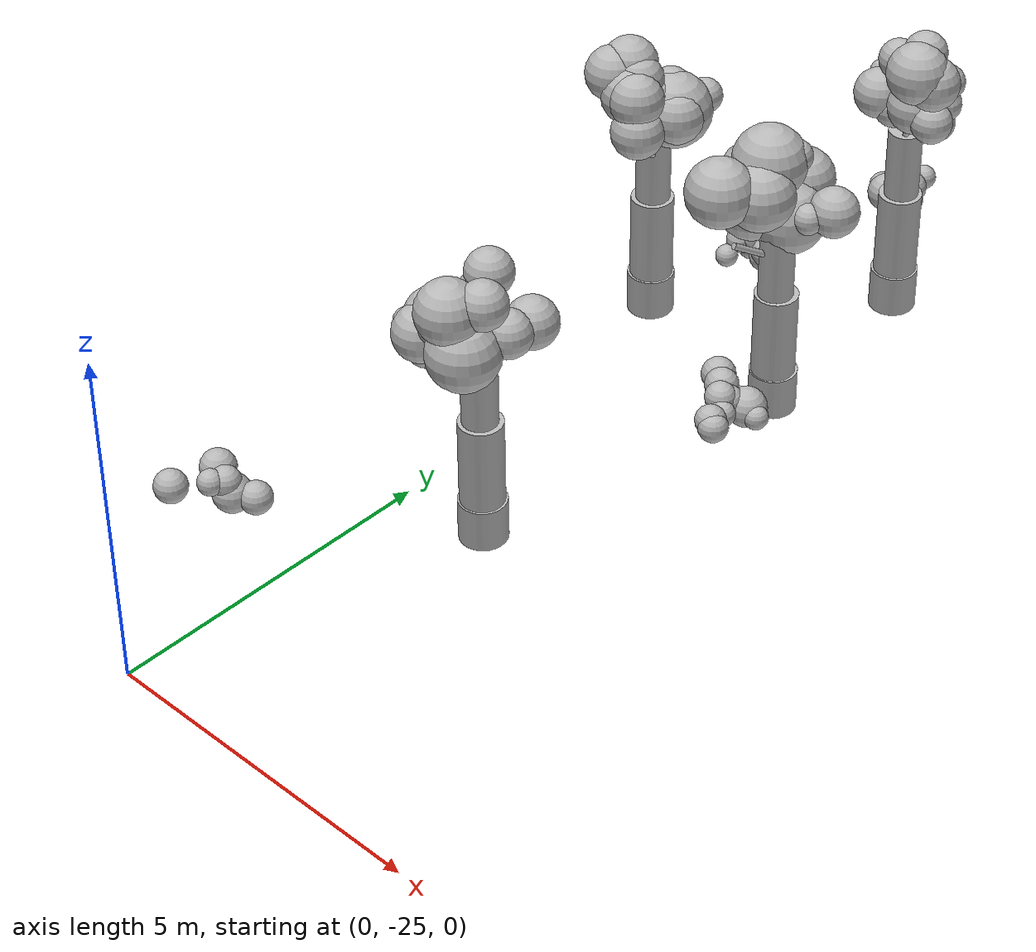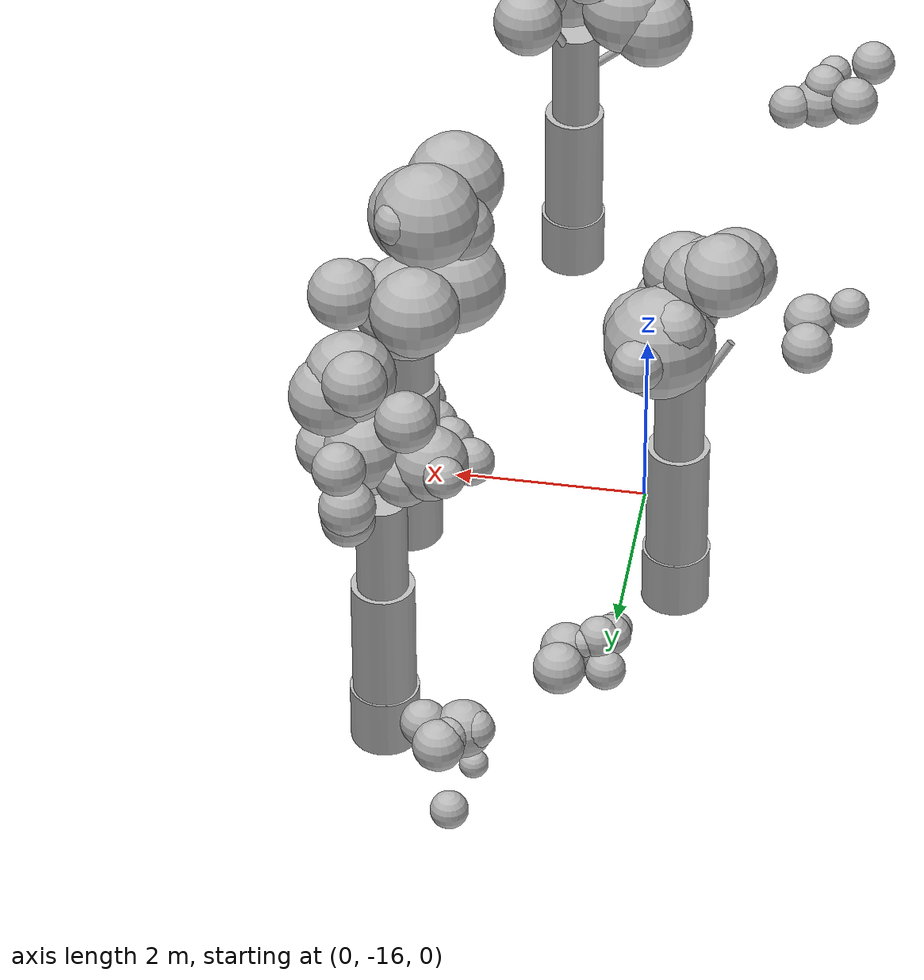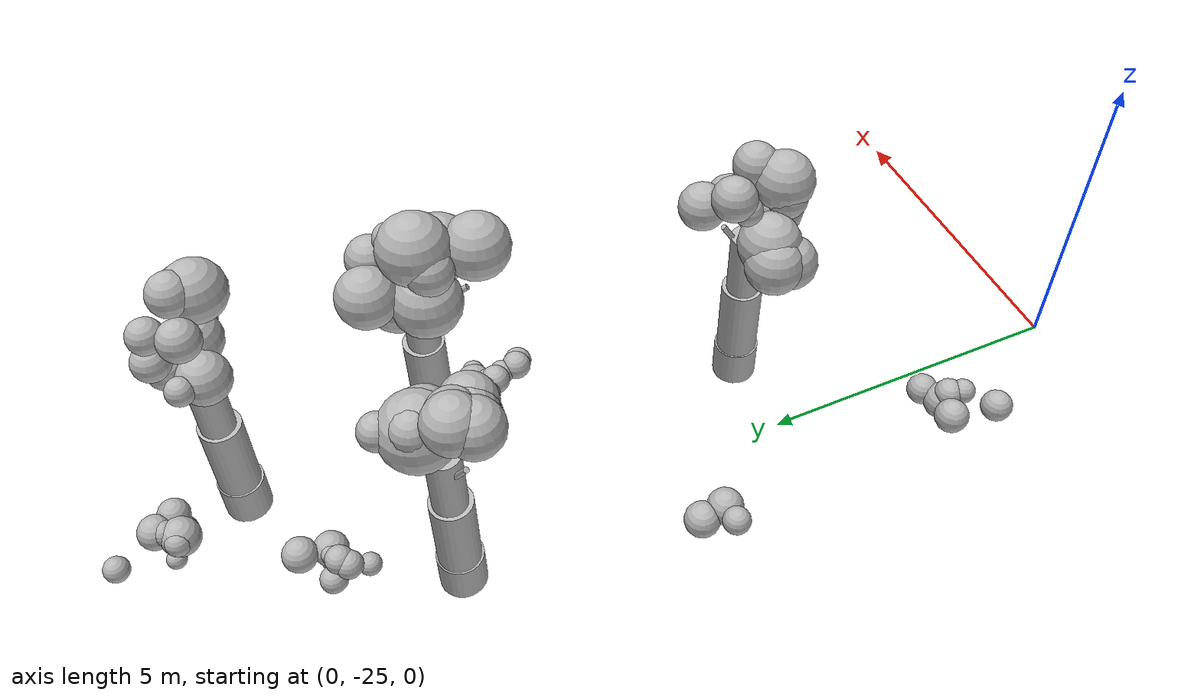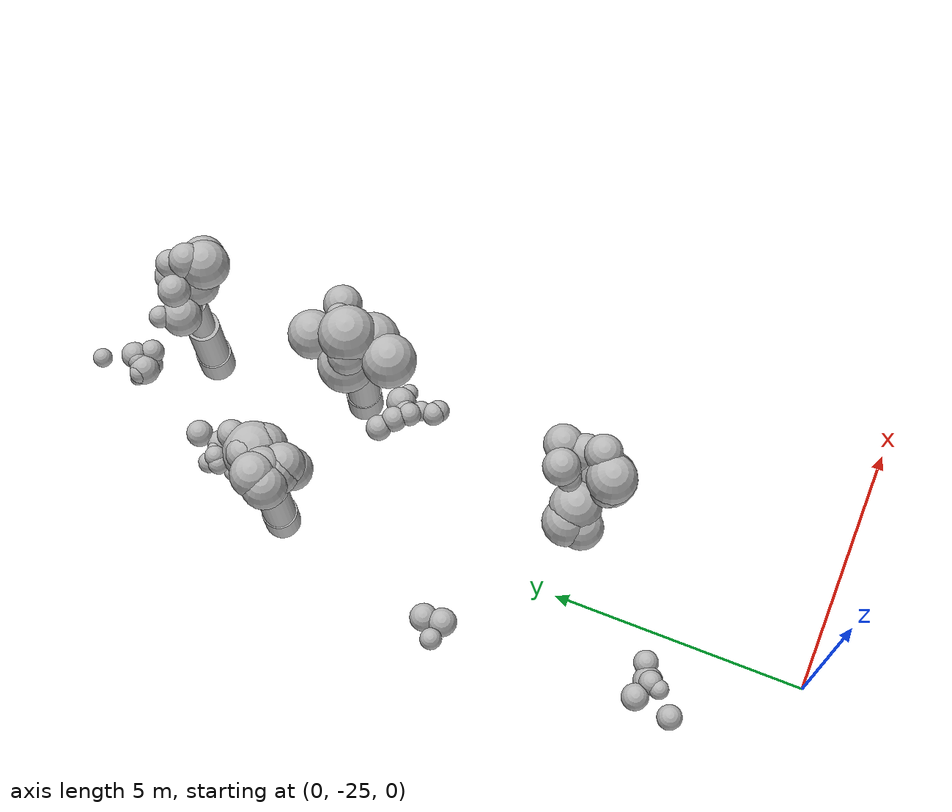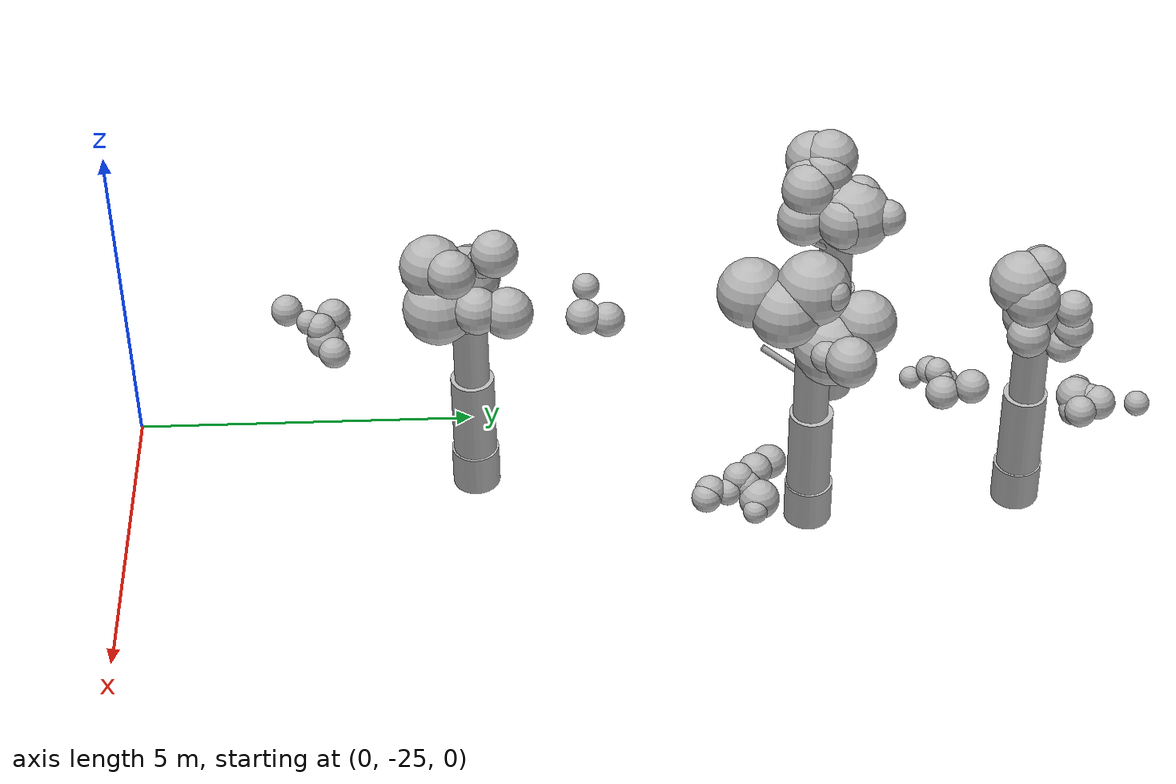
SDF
<sdf version="1.6">
 <world name="default">
  <model name="bush_4">
   <static>true</static>
   <pose>2.0258 -11.9787 0 0 0 0</pose>
   <link name="trunk">
    <pose>0 0 1.5000 0 0 0</pose>
    <collision name="trunk_c">
     <geometry><cylinder><radius>0.3500</radius><length>3.0000</length></cylinder></geometry>
    </collision>
   </link>
   <link name="trunk_v0">
    <pose>-0.0002 0.0012 0.3100 0 0 0</pose>
    <visual name="trunk_v0_v">
     <geometry><cylinder><radius>0.3448</radius><length>0.6448</length></cylinder></geometry>
     <material>
      <script>
       <uri>model://bushfire/materials/scripts</uri>
       <uri>model://bushfire/materials/textures</uri>
       <name>Bushfire/CharBark</name>
      </script>
     </material>
    </visual>
   </link>
   <link name="trunk_v1">
    <pose>-0.0013 0.0086 1.2700 0 0 0</pose>
    <visual name="trunk_v1_v">
     <geometry><cylinder><radius>0.3150</radius><length>1.3520</length></cylinder></geometry>
     <material>
      <script>
       <uri>model://bushfire/materials/scripts</uri>
       <uri>model://bushfire/materials/textures</uri>
       <name>Bushfire/BarkSmooth</name>
      </script>
     </material>
    </visual>
   </link>
   <link name="trunk_v2">
    <pose>-0.0032 0.0218 2.4600 0 0 0</pose>
    <visual name="trunk_v2_v">
     <geometry><cylinder><radius>0.2520</radius><length>1.1232</length></cylinder></geometry>
     <material>
      <script>
       <uri>model://bushfire/materials/scripts</uri>
       <uri>model://bushfire/materials/textures</uri>
       <name>Bushfire/BarkSmooth</name>
      </script>
     </material>
    </visual>
   </link>
   <link name="branch0">
    <pose>0.1384 -0.1552 3.1779 0 0.5532 5.4406</pose>
    <visual name="branch0_v">
     <geometry><cylinder><radius>0.0456</radius><length>0.7915</length></cylinder></geometry>
     <material>
      <script>
       <uri>model://bushfire/materials/scripts</uri>
       <uri>model://bushfire/materials/textures</uri>
       <name>Bushfire/BarkSmooth</name>
      </script>
     </material>
    </visual>
   </link>
   <link name="branch1">
    <pose>0.1120 0.2072 2.8058 0 0.7359 7.3583</pose>
    <visual name="branch1_v">
     <geometry><cylinder><radius>0.0362</radius><length>0.7017</length></cylinder></geometry>
     <material>
      <script>
       <uri>model://bushfire/materials/scripts</uri>
       <uri>model://bushfire/materials/textures</uri>
       <name>Bushfire/BarkSmooth</name>
      </script>
     </material>
    </visual>
   </link>
   <link name="branch2">
    <pose>-0.3296 -0.0230 3.0466 0 0.9083 9.4946</pose>
    <visual name="branch2_v">
     <geometry><cylinder><radius>0.0307</radius><length>0.8381</length></cylinder></geometry>
     <material>
      <script>
       <uri>model://bushfire/materials/scripts</uri>
       <uri>model://bushfire/materials/textures</uri>
       <name>Bushfire/BarkSmooth</name>
      </script>
     </material>
    </visual>
   </link>
   <link name="foliage0">
    <pose>0.3318 -0.2785 4.2442 0 0 0</pose>
    <visual name="foliage0_v">
     <geometry><sphere><radius>0.4470</radius></sphere></geometry>
     <material>
      <script>
       <uri>model://bushfire/materials/scripts</uri>
       <uri>model://bushfire/materials/textures</uri>
       <name>Bushfire/Foliage0</name>
      </script>
     </material>
    </visual>
   </link>
   <link name="foliage1">
    <pose>0.2436 0.4138 3.0568 0 0 0</pose>
    <visual name="foliage1_v">
     <geometry><sphere><radius>0.2616</radius></sphere></geometry>
     <material>
      <script>
       <uri>model://bushfire/materials/scripts</uri>
       <uri>model://bushfire/materials/textures</uri>
       <name>Bushfire/Foliage1</name>
      </script>
     </material>
    </visual>
   </link>
   <link name="foliage2">
    <pose>-0.6628 0.2693 3.5846 0 0 0</pose>
    <visual name="foliage2_v">
     <geometry><sphere><radius>0.2007</radius></sphere></geometry>
     <material>
      <script>
       <uri>model://bushfire/materials/scripts</uri>
       <uri>model://bushfire/materials/textures</uri>
       <name>Bushfire/Foliage1</name>
      </script>
     </material>
    </visual>
   </link>
   <link name="foliage3">
    <pose>0.5140 -0.1524 4.0978 0 0 0</pose>
    <visual name="foliage3_v">
     <geometry><sphere><radius>0.3913</radius></sphere></geometry>
     <material>
      <script>
       <uri>model://bushfire/materials/scripts</uri>
       <uri>model://bushfire/materials/textures</uri>
       <name>Bushfire/Foliage0</name>
      </script>
     </material>
    </visual>
   </link>
   <link name="foliage4">
    <pose>0.1855 -0.0778 3.5461 0 0 0</pose>
    <visual name="foliage4_v">
     <geometry><sphere><radius>0.3977</radius></sphere></geometry>
     <material>
      <script>
       <uri>model://bushfire/materials/scripts</uri>
       <uri>model://bushfire/materials/textures</uri>
       <name>Bushfire/Foliage2</name>
      </script>
     </material>
    </visual>
   </link>
   <link name="foliage5">
    <pose>-0.4727 -0.0523 3.4777 0 0 0</pose>
    <visual name="foliage5_v">
     <geometry><sphere><radius>0.3682</radius></sphere></geometry>
     <material>
      <script>
       <uri>model://bushfire/materials/scripts</uri>
       <uri>model://bushfire/materials/textures</uri>
       <name>Bushfire/Foliage1</name>
      </script>
     </material>
    </visual>
   </link>
   <link name="foliage6">
    <pose>0.2340 -0.3947 4.3625 0 0 0</pose>
    <visual name="foliage6_v">
     <geometry><sphere><radius>0.2232</radius></sphere></geometry>
     <material>
      <script>
       <uri>model://bushfire/materials/scripts</uri>
       <uri>model://bushfire/materials/textures</uri>
       <name>Bushfire/Foliage1</name>
      </script>
     </material>
    </visual>
   </link>
   <link name="foliage7">
    <pose>0.2258 0.5385 3.3207 0 0 0</pose>
    <visual name="foliage7_v">
     <geometry><sphere><radius>0.2764</radius></sphere></geometry>
     <material>
      <script>
       <uri>model://bushfire/materials/scripts</uri>
       <uri>model://bushfire/materials/textures</uri>
       <name>Bushfire/Foliage1</name>
      </script>
     </material>
    </visual>
   </link>
   <link name="foliage8">
    <pose>-0.2308 -0.0013 3.3195 0 0 0</pose>
    <visual name="foliage8_v">
     <geometry><sphere><radius>0.2956</radius></sphere></geometry>
     <material>
      <script>
       <uri>model://bushfire/materials/scripts</uri>
       <uri>model://bushfire/materials/textures</uri>
       <name>Bushfire/Foliage2</name>
      </script>
     </material>
    </visual>
   </link>
   <link name="foliage9">
    <pose>0.5462 -0.1522 3.4667 0 0 0</pose>
    <visual name="foliage9_v">
     <geometry><sphere><radius>0.3037</radius></sphere></geometry>
     <material>
      <script>
       <uri>model://bushfire/materials/scripts</uri>
       <uri>model://bushfire/materials/textures</uri>
       <name>Bushfire/Foliage0</name>
      </script>
     </material>
    </visual>
   </link>
   <link name="foliage10">
    <pose>0.3070 0.4895 3.7382 0 0 0</pose>
    <visual name="foliage10_v">
     <geometry><sphere><radius>0.2598</radius></sphere></geometry>
     <material>
      <script>
       <uri>model://bushfire/materials/scripts</uri>
       <uri>model://bushfire/materials/textures</uri>
       <name>Bushfire/Foliage2</name>
      </script>
     </material>
    </visual>
   </link>
   <link name="foliage11">
    <pose>-0.2635 0.0824 4.0621 0 0 0</pose>
    <visual name="foliage11_v">
     <geometry><sphere><radius>0.2972</radius></sphere></geometry>
     <material>
      <script>
       <uri>model://bushfire/materials/scripts</uri>
       <uri>model://bushfire/materials/textures</uri>
       <name>Bushfire/Foliage1</name>
      </script>
     </material>
    </visual>
   </link>
   <link name="foliage12">
    <pose>0.2324 0.0113 4.4027 0 0 0</pose>
    <visual name="foliage12_v">
     <geometry><sphere><radius>0.3160</radius></sphere></geometry>
     <material>
      <script>
       <uri>model://bushfire/materials/scripts</uri>
       <uri>model://bushfire/materials/textures</uri>
       <name>Bushfire/Foliage1</name>
      </script>
     </material>
    </visual>
   </link>
  </model>
  <model name="bush_5">
   <static>true</static>
   <pose>-0.5220 -14.5112 0 0 0 0</pose>
   <link name="trunk">
    <pose>0 0 1.5000 0 0 0</pose>
    <collision name="trunk_c">
     <geometry><cylinder><radius>0.3500</radius><length>3.0000</length></cylinder></geometry>
    </collision>
   </link>
   <link name="trunk_v0">
    <pose>-0.0003 0.0008 0.3100 0 0 0</pose>
    <visual name="trunk_v0_v">
     <geometry><cylinder><radius>0.3448</radius><length>0.6448</length></cylinder></geometry>
     <material>
      <script>
       <uri>model://bushfire/materials/scripts</uri>
       <uri>model://bushfire/materials/textures</uri>
       <name>Bushfire/CharBark</name>
      </script>
     </material>
    </visual>
   </link>
   <link name="trunk_v1">
    <pose>-0.0018 0.0059 1.2700 0 0 0</pose>
    <visual name="trunk_v1_v">
     <geometry><cylinder><radius>0.3150</radius><length>1.3520</length></cylinder></geometry>
     <material>
      <script>
       <uri>model://bushfire/materials/scripts</uri>
       <uri>model://bushfire/materials/textures</uri>
       <name>Bushfire/BarkSmooth</name>
      </script>
     </material>
    </visual>
   </link>
   <link name="trunk_v2">
    <pose>-0.0047 0.0150 2.4600 0 0 0</pose>
    <visual name="trunk_v2_v">
     <geometry><cylinder><radius>0.2520</radius><length>1.1232</length></cylinder></geometry>
     <material>
      <script>
       <uri>model://bushfire/materials/scripts</uri>
       <uri>model://bushfire/materials/textures</uri>
       <name>Bushfire/BarkSmooth</name>
      </script>
     </material>
    </visual>
   </link>
   <link name="branch0">
    <pose>0.0574 0.1799 2.8045 0 0.5224 1.2621</pose>
    <visual name="branch0_v">
     <geometry><cylinder><radius>0.0322</radius><length>0.7568</length></cylinder></geometry>
     <material>
      <script>
       <uri>model://bushfire/materials/scripts</uri>
       <uri>model://bushfire/materials/textures</uri>
       <name>Bushfire/BarkSmooth</name>
      </script>
     </material>
    </visual>
   </link>
   <link name="branch1">
    <pose>-0.2399 -0.0789 2.7997 0 0.5665 3.4592</pose>
    <visual name="branch1_v">
     <geometry><cylinder><radius>0.0412</radius><length>0.9410</length></cylinder></geometry>
     <material>
      <script>
       <uri>model://bushfire/materials/scripts</uri>
       <uri>model://bushfire/materials/textures</uri>
       <name>Bushfire/BarkSmooth</name>
      </script>
     </material>
    </visual>
   </link>
   <link name="branch2">
    <pose>0.1456 -0.1777 2.8117 0 0.8429 5.3987</pose>
    <visual name="branch2_v">
     <geometry><cylinder><radius>0.0410</radius><length>0.6155</length></cylinder></geometry>
     <material>
      <script>
       <uri>model://bushfire/materials/scripts</uri>
       <uri>model://bushfire/materials/textures</uri>
       <name>Bushfire/BarkSmooth</name>
      </script>
     </material>
    </visual>
   </link>
   <link name="foliage0">
    <pose>0.3505 0.0844 3.4426 0 0 0</pose>
    <visual name="foliage0_v">
     <geometry><sphere><radius>0.4143</radius></sphere></geometry>
     <material>
      <script>
       <uri>model://bushfire/materials/scripts</uri>
       <uri>model://bushfire/materials/textures</uri>
       <name>Bushfire/Foliage0</name>
      </script>
     </material>
    </visual>
   </link>
   <link name="foliage1">
    <pose>-0.4839 -0.3367 3.9760 0 0 0</pose>
    <visual name="foliage1_v">
     <geometry><sphere><radius>0.4086</radius></sphere></geometry>
     <material>
      <script>
       <uri>model://bushfire/materials/scripts</uri>
       <uri>model://bushfire/materials/textures</uri>
       <name>Bushfire/Foliage0</name>
      </script>
     </material>
    </visual>
   </link>
   <link name="foliage2">
    <pose>0.1474 -0.5034 3.3461 0 0 0</pose>
    <visual name="foliage2_v">
     <geometry><sphere><radius>0.3909</radius></sphere></geometry>
     <material>
      <script>
       <uri>model://bushfire/materials/scripts</uri>
       <uri>model://bushfire/materials/textures</uri>
       <name>Bushfire/Foliage0</name>
      </script>
     </material>
    </visual>
   </link>
   <link name="foliage3">
    <pose>0.0280 0.3232 3.6496 0 0 0</pose>
    <visual name="foliage3_v">
     <geometry><sphere><radius>0.3169</radius></sphere></geometry>
     <material>
      <script>
       <uri>model://bushfire/materials/scripts</uri>
       <uri>model://bushfire/materials/textures</uri>
       <name>Bushfire/Foliage1</name>
      </script>
     </material>
    </visual>
   </link>
   <link name="foliage4">
    <pose>-0.1255 -0.3579 3.7790 0 0 0</pose>
    <visual name="foliage4_v">
     <geometry><sphere><radius>0.4324</radius></sphere></geometry>
     <material>
      <script>
       <uri>model://bushfire/materials/scripts</uri>
       <uri>model://bushfire/materials/textures</uri>
       <name>Bushfire/Foliage2</name>
      </script>
     </material>
    </visual>
   </link>
   <link name="foliage5">
    <pose>0.0133 -0.0753 3.6012 0 0 0</pose>
    <visual name="foliage5_v">
     <geometry><sphere><radius>0.3720</radius></sphere></geometry>
     <material>
      <script>
       <uri>model://bushfire/materials/scripts</uri>
       <uri>model://bushfire/materials/textures</uri>
       <name>Bushfire/Foliage1</name>
      </script>
     </material>
    </visual>
   </link>
   <link name="foliage6">
    <pose>0.1811 0.2268 3.4096 0 0 0</pose>
    <visual name="foliage6_v">
     <geometry><sphere><radius>0.5579</radius></sphere></geometry>
     <material>
      <script>
       <uri>model://bushfire/materials/scripts</uri>
       <uri>model://bushfire/materials/textures</uri>
       <name>Bushfire/Foliage1</name>
      </script>
     </material>
    </visual>
   </link>
   <link name="foliage7">
    <pose>-0.3809 -0.0977 4.0636 0 0 0</pose>
    <visual name="foliage7_v">
     <geometry><sphere><radius>0.4130</radius></sphere></geometry>
     <material>
      <script>
       <uri>model://bushfire/materials/scripts</uri>
       <uri>model://bushfire/materials/textures</uri>
       <name>Bushfire/Foliage2</name>
      </script>
     </material>
    </visual>
   </link>
   <link name="foliage8">
    <pose>0.0474 -0.4334 3.8026 0 0 0</pose>
    <visual name="foliage8_v">
     <geometry><sphere><radius>0.4017</radius></sphere></geometry>
     <material>
      <script>
       <uri>model://bushfire/materials/scripts</uri>
       <uri>model://bushfire/materials/textures</uri>
       <name>Bushfire/Foliage1</name>
      </script>
     </material>
    </visual>
   </link>
   <link name="foliage9">
    <pose>0.3297 0.7079 3.4813 0 0 0</pose>
    <visual name="foliage9_v">
     <geometry><sphere><radius>0.2623</radius></sphere></geometry>
     <material>
      <script>
       <uri>model://bushfire/materials/scripts</uri>
       <uri>model://bushfire/materials/textures</uri>
       <name>Bushfire/Foliage0</name>
      </script>
     </material>
    </visual>
   </link>
   <link name="foliage10">
    <pose>-0.1682 -0.1704 3.9271 0 0 0</pose>
    <visual name="foliage10_v">
     <geometry><sphere><radius>0.3843</radius></sphere></geometry>
     <material>
      <script>
       <uri>model://bushfire/materials/scripts</uri>
       <uri>model://bushfire/materials/textures</uri>
       <name>Bushfire/Foliage2</name>
      </script>
     </material>
    </visual>
   </link>
  </model>
  <model name="bush_19">
   <static>true</static>
   <pose>1.3635 -19.9162 0 0 0 0</pose>
   <link name="trunk">
    <pose>0 0 1.5000 0 0 0</pose>
    <collision name="trunk_c">
     <geometry><cylinder><radius>0.3500</radius><length>3.0000</length></cylinder></geometry>
    </collision>
   </link>
   <link name="trunk_v0">
    <pose>-0.0010 -0.0000 0.3100 0 0 0</pose>
    <visual name="trunk_v0_v">
     <geometry><cylinder><radius>0.3448</radius><length>0.6448</length></cylinder></geometry>
     <material>
      <script>
       <uri>model://bushfire/materials/scripts</uri>
       <uri>model://bushfire/materials/textures</uri>
       <name>Bushfire/CharBark</name>
      </script>
     </material>
    </visual>
   </link>
   <link name="trunk_v1">
    <pose>-0.0068 -0.0003 1.2700 0 0 0</pose>
    <visual name="trunk_v1_v">
     <geometry><cylinder><radius>0.3150</radius><length>1.3520</length></cylinder></geometry>
     <material>
      <script>
       <uri>model://bushfire/materials/scripts</uri>
       <uri>model://bushfire/materials/textures</uri>
       <name>Bushfire/BarkSmooth</name>
      </script>
     </material>
    </visual>
   </link>
   <link name="trunk_v2">
    <pose>-0.0173 -0.0008 2.4600 0 0 0</pose>
    <visual name="trunk_v2_v">
     <geometry><cylinder><radius>0.2520</radius><length>1.1232</length></cylinder></geometry>
     <material>
      <script>
       <uri>model://bushfire/materials/scripts</uri>
       <uri>model://bushfire/materials/textures</uri>
       <name>Bushfire/BarkSmooth</name>
      </script>
     </material>
    </visual>
   </link>
   <link name="branch0">
    <pose>0.0740 0.1665 2.9355 0 0.5892 1.1527</pose>
    <visual name="branch0_v">
     <geometry><cylinder><radius>0.0437</radius><length>0.6559</length></cylinder></geometry>
     <material>
      <script>
       <uri>model://bushfire/materials/scripts</uri>
       <uri>model://bushfire/materials/textures</uri>
       <name>Bushfire/BarkSmooth</name>
      </script>
     </material>
    </visual>
   </link>
   <link name="branch1">
    <pose>-0.2786 0.0008 2.6502 0 0.8594 3.1387</pose>
    <visual name="branch1_v">
     <geometry><cylinder><radius>0.0444</radius><length>0.7357</length></cylinder></geometry>
     <material>
      <script>
       <uri>model://bushfire/materials/scripts</uri>
       <uri>model://bushfire/materials/textures</uri>
       <name>Bushfire/BarkSmooth</name>
      </script>
     </material>
    </visual>
   </link>
   <link name="branch2">
    <pose>-0.0758 -0.3235 2.9883 0 0.8004 4.4822</pose>
    <visual name="branch2_v">
     <geometry><cylinder><radius>0.0393</radius><length>0.9259</length></cylinder></geometry>
     <material>
      <script>
       <uri>model://bushfire/materials/scripts</uri>
       <uri>model://bushfire/materials/textures</uri>
       <name>Bushfire/BarkSmooth</name>
      </script>
     </material>
    </visual>
   </link>
   <link name="branch3">
    <pose>0.1724 -0.0277 2.9279 0 0.5600 6.1242</pose>
    <visual name="branch3_v">
     <geometry><cylinder><radius>0.0356</radius><length>0.6575</length></cylinder></geometry>
     <material>
      <script>
       <uri>model://bushfire/materials/scripts</uri>
       <uri>model://bushfire/materials/textures</uri>
       <name>Bushfire/BarkSmooth</name>
      </script>
     </material>
    </visual>
   </link>
   <link name="foliage0">
    <pose>-0.1831 0.3893 4.0618 0 0 0</pose>
    <visual name="foliage0_v">
     <geometry><sphere><radius>0.3379</radius></sphere></geometry>
     <material>
      <script>
       <uri>model://bushfire/materials/scripts</uri>
       <uri>model://bushfire/materials/textures</uri>
       <name>Bushfire/Foliage2</name>
      </script>
     </material>
    </visual>
   </link>
   <link name="foliage1">
    <pose>-0.5516 -0.0378 3.3376 0 0 0</pose>
    <visual name="foliage1_v">
     <geometry><sphere><radius>0.4751</radius></sphere></geometry>
     <material>
      <script>
       <uri>model://bushfire/materials/scripts</uri>
       <uri>model://bushfire/materials/textures</uri>
       <name>Bushfire/Foliage2</name>
      </script>
     </material>
    </visual>
   </link>
   <link name="foliage2">
    <pose>-0.0428 -0.4935 3.9685 0 0 0</pose>
    <visual name="foliage2_v">
     <geometry><sphere><radius>0.4549</radius></sphere></geometry>
     <material>
      <script>
       <uri>model://bushfire/materials/scripts</uri>
       <uri>model://bushfire/materials/textures</uri>
       <name>Bushfire/Foliage2</name>
      </script>
     </material>
    </visual>
   </link>
   <link name="foliage3">
    <pose>0.2996 -0.2104 4.0986 0 0 0</pose>
    <visual name="foliage3_v">
     <geometry><sphere><radius>0.3438</radius></sphere></geometry>
     <material>
      <script>
       <uri>model://bushfire/materials/scripts</uri>
       <uri>model://bushfire/materials/textures</uri>
       <name>Bushfire/Foliage2</name>
      </script>
     </material>
    </visual>
   </link>
   <link name="foliage4">
    <pose>0.4153 0.5559 3.4786 0 0 0</pose>
    <visual name="foliage4_v">
     <geometry><sphere><radius>0.3649</radius></sphere></geometry>
     <material>
      <script>
       <uri>model://bushfire/materials/scripts</uri>
       <uri>model://bushfire/materials/textures</uri>
       <name>Bushfire/Foliage2</name>
      </script>
     </material>
    </visual>
   </link>
   <link name="foliage5">
    <pose>-0.8285 0.0235 3.1929 0 0 0</pose>
    <visual name="foliage5_v">
     <geometry><sphere><radius>0.4416</radius></sphere></geometry>
     <material>
      <script>
       <uri>model://bushfire/materials/scripts</uri>
       <uri>model://bushfire/materials/textures</uri>
       <name>Bushfire/Foliage0</name>
      </script>
     </material>
    </visual>
   </link>
   <link name="foliage6">
    <pose>-0.2094 -0.4761 3.7703 0 0 0</pose>
    <visual name="foliage6_v">
     <geometry><sphere><radius>0.3024</radius></sphere></geometry>
     <material>
      <script>
       <uri>model://bushfire/materials/scripts</uri>
       <uri>model://bushfire/materials/textures</uri>
       <name>Bushfire/Foliage1</name>
      </script>
     </material>
    </visual>
   </link>
   <link name="foliage7">
    <pose>0.4033 0.1292 3.5201 0 0 0</pose>
    <visual name="foliage7_v">
     <geometry><sphere><radius>0.3369</radius></sphere></geometry>
     <material>
      <script>
       <uri>model://bushfire/materials/scripts</uri>
       <uri>model://bushfire/materials/textures</uri>
       <name>Bushfire/Foliage2</name>
      </script>
     </material>
    </visual>
   </link>
   <link name="foliage8">
    <pose>-0.2737 0.2147 3.8502 0 0 0</pose>
    <visual name="foliage8_v">
     <geometry><sphere><radius>0.2281</radius></sphere></geometry>
     <material>
      <script>
       <uri>model://bushfire/materials/scripts</uri>
       <uri>model://bushfire/materials/textures</uri>
       <name>Bushfire/Foliage2</name>
      </script>
     </material>
    </visual>
   </link>
   <link name="foliage9">
    <pose>-0.8093 -0.2497 3.1178 0 0 0</pose>
    <visual name="foliage9_v">
     <geometry><sphere><radius>0.4076</radius></sphere></geometry>
     <material>
      <script>
       <uri>model://bushfire/materials/scripts</uri>
       <uri>model://bushfire/materials/textures</uri>
       <name>Bushfire/Foliage0</name>
      </script>
     </material>
    </visual>
   </link>
   <link name="foliage10">
    <pose>0.1374 -0.4185 3.3591 0 0 0</pose>
    <visual name="foliage10_v">
     <geometry><sphere><radius>0.5136</radius></sphere></geometry>
     <material>
      <script>
       <uri>model://bushfire/materials/scripts</uri>
       <uri>model://bushfire/materials/textures</uri>
       <name>Bushfire/Foliage1</name>
      </script>
     </material>
    </visual>
   </link>
  </model>
  <model name="bush_26">
   <static>true</static>
   <pose>2.3273 -15.0696 0 0 0 0</pose>
   <link name="trunk">
    <pose>0 0 1.5000 0 0 0</pose>
    <collision name="trunk_c">
     <geometry><cylinder><radius>0.3500</radius><length>3.0000</length></cylinder></geometry>
    </collision>
   </link>
   <link name="trunk_v0">
    <pose>-0.0010 -0.0013 0.3100 0 0 0</pose>
    <visual name="trunk_v0_v">
     <geometry><cylinder><radius>0.3448</radius><length>0.6448</length></cylinder></geometry>
     <material>
      <script>
       <uri>model://bushfire/materials/scripts</uri>
       <uri>model://bushfire/materials/textures</uri>
       <name>Bushfire/CharBark</name>
      </script>
     </material>
    </visual>
   </link>
   <link name="trunk_v1">
    <pose>-0.0070 -0.0090 1.2700 0 0 0</pose>
    <visual name="trunk_v1_v">
     <geometry><cylinder><radius>0.3150</radius><length>1.3520</length></cylinder></geometry>
     <material>
      <script>
       <uri>model://bushfire/materials/scripts</uri>
       <uri>model://bushfire/materials/textures</uri>
       <name>Bushfire/BarkStringy</name>
      </script>
     </material>
    </visual>
   </link>
   <link name="trunk_v2">
    <pose>-0.0176 -0.0227 2.4600 0 0 0</pose>
    <visual name="trunk_v2_v">
     <geometry><cylinder><radius>0.2520</radius><length>1.1232</length></cylinder></geometry>
     <material>
      <script>
       <uri>model://bushfire/materials/scripts</uri>
       <uri>model://bushfire/materials/textures</uri>
       <name>Bushfire/BarkStringy</name>
      </script>
     </material>
    </visual>
   </link>
   <link name="branch0">
    <pose>-0.3322 -0.0901 2.9578 0 1.0033 3.4064</pose>
    <visual name="branch0_v">
     <geometry><cylinder><radius>0.0400</radius><length>0.8164</length></cylinder></geometry>
     <material>
      <script>
       <uri>model://bushfire/materials/scripts</uri>
       <uri>model://bushfire/materials/textures</uri>
       <name>Bushfire/BarkStringy</name>
      </script>
     </material>
    </visual>
   </link>
   <link name="branch1">
    <pose>-0.1076 -0.3627 2.7710 0 1.0196 4.4241</pose>
    <visual name="branch1_v">
     <geometry><cylinder><radius>0.0463</radius><length>0.8883</length></cylinder></geometry>
     <material>
      <script>
       <uri>model://bushfire/materials/scripts</uri>
       <uri>model://bushfire/materials/textures</uri>
       <name>Bushfire/BarkStringy</name>
      </script>
     </material>
    </visual>
   </link>
   <link name="branch2">
    <pose>0.2470 0.0647 3.0067 0 0.8300 6.5395</pose>
    <visual name="branch2_v">
     <geometry><cylinder><radius>0.0547</radius><length>0.6920</length></cylinder></geometry>
     <material>
      <script>
       <uri>model://bushfire/materials/scripts</uri>
       <uri>model://bushfire/materials/textures</uri>
       <name>Bushfire/BarkStringy</name>
      </script>
     </material>
    </visual>
   </link>
   <link name="branch3">
    <pose>-0.0209 0.2160 2.8048 0 0.8031 7.9504</pose>
    <visual name="branch3_v">
     <geometry><cylinder><radius>0.0308</radius><length>0.6032</length></cylinder></geometry>
     <material>
      <script>
       <uri>model://bushfire/materials/scripts</uri>
       <uri>model://bushfire/materials/textures</uri>
       <name>Bushfire/BarkStringy</name>
      </script>
     </material>
    </visual>
   </link>
   <link name="foliage0">
    <pose>-0.2120 -0.0431 4.0484 0 0 0</pose>
    <visual name="foliage0_v">
     <geometry><sphere><radius>0.5315</radius></sphere></geometry>
     <material>
      <script>
       <uri>model://bushfire/materials/scripts</uri>
       <uri>model://bushfire/materials/textures</uri>
       <name>Bushfire/Foliage2</name>
      </script>
     </material>
    </visual>
   </link>
   <link name="foliage1">
    <pose>-0.0402 -0.4290 3.7609 0 0 0</pose>
    <visual name="foliage1_v">
     <geometry><sphere><radius>0.4988</radius></sphere></geometry>
     <material>
      <script>
       <uri>model://bushfire/materials/scripts</uri>
       <uri>model://bushfire/materials/textures</uri>
       <name>Bushfire/Foliage2</name>
      </script>
     </material>
    </visual>
   </link>
   <link name="foliage2">
    <pose>0.0317 0.2073 4.1235 0 0 0</pose>
    <visual name="foliage2_v">
     <geometry><sphere><radius>0.2398</radius></sphere></geometry>
     <material>
      <script>
       <uri>model://bushfire/materials/scripts</uri>
       <uri>model://bushfire/materials/textures</uri>
       <name>Bushfire/Foliage2</name>
      </script>
     </material>
    </visual>
   </link>
   <link name="foliage3">
    <pose>-0.2116 0.7019 3.4138 0 0 0</pose>
    <visual name="foliage3_v">
     <geometry><sphere><radius>0.4528</radius></sphere></geometry>
     <material>
      <script>
       <uri>model://bushfire/materials/scripts</uri>
       <uri>model://bushfire/materials/textures</uri>
       <name>Bushfire/Foliage0</name>
      </script>
     </material>
    </visual>
   </link>
   <link name="foliage4">
    <pose>-0.4800 -0.0543 3.2530 0 0 0</pose>
    <visual name="foliage4_v">
     <geometry><sphere><radius>0.5203</radius></sphere></geometry>
     <material>
      <script>
       <uri>model://bushfire/materials/scripts</uri>
       <uri>model://bushfire/materials/textures</uri>
       <name>Bushfire/Foliage1</name>
      </script>
     </material>
    </visual>
   </link>
   <link name="foliage5">
    <pose>-0.2171 -0.0506 3.3048 0 0 0</pose>
    <visual name="foliage5_v">
     <geometry><sphere><radius>0.2744</radius></sphere></geometry>
     <material>
      <script>
       <uri>model://bushfire/materials/scripts</uri>
       <uri>model://bushfire/materials/textures</uri>
       <name>Bushfire/Foliage2</name>
      </script>
     </material>
    </visual>
   </link>
   <link name="foliage6">
    <pose>0.5560 0.4378 3.3450 0 0 0</pose>
    <visual name="foliage6_v">
     <geometry><sphere><radius>0.3594</radius></sphere></geometry>
     <material>
      <script>
       <uri>model://bushfire/materials/scripts</uri>
       <uri>model://bushfire/materials/textures</uri>
       <name>Bushfire/Foliage2</name>
      </script>
     </material>
    </visual>
   </link>
   <link name="foliage7">
    <pose>-0.0916 0.3753 3.1924 0 0 0</pose>
    <visual name="foliage7_v">
     <geometry><sphere><radius>0.3274</radius></sphere></geometry>
     <material>
      <script>
       <uri>model://bushfire/materials/scripts</uri>
       <uri>model://bushfire/materials/textures</uri>
       <name>Bushfire/Foliage0</name>
      </script>
     </material>
    </visual>
   </link>
   <link name="foliage8">
    <pose>-0.5112 -0.1452 3.8535 0 0 0</pose>
    <visual name="foliage8_v">
     <geometry><sphere><radius>0.3594</radius></sphere></geometry>
     <material>
      <script>
       <uri>model://bushfire/materials/scripts</uri>
       <uri>model://bushfire/materials/textures</uri>
       <name>Bushfire/Foliage0</name>
      </script>
     </material>
    </visual>
   </link>
   <link name="foliage9">
    <pose>-0.3536 -0.8857 3.8909 0 0 0</pose>
    <visual name="foliage9_v">
     <geometry><sphere><radius>0.4945</radius></sphere></geometry>
     <material>
      <script>
       <uri>model://bushfire/materials/scripts</uri>
       <uri>model://bushfire/materials/textures</uri>
       <name>Bushfire/Foliage2</name>
      </script>
     </material>
    </visual>
   </link>
   <link name="foliage10">
    <pose>0.3674 0.1201 3.2987 0 0 0</pose>
    <visual name="foliage10_v">
     <geometry><sphere><radius>0.2232</radius></sphere></geometry>
     <material>
      <script>
       <uri>model://bushfire/materials/scripts</uri>
       <uri>model://bushfire/materials/textures</uri>
       <name>Bushfire/Foliage2</name>
      </script>
     </material>
    </visual>
   </link>
   <link name="foliage11">
    <pose>-0.0602 0.2321 3.0993 0 0 0</pose>
    <visual name="foliage11_v">
     <geometry><sphere><radius>0.5385</radius></sphere></geometry>
     <material>
      <script>
       <uri>model://bushfire/materials/scripts</uri>
       <uri>model://bushfire/materials/textures</uri>
       <name>Bushfire/Foliage0</name>
      </script>
     </material>
    </visual>
   </link>
  </model>
  <model name="scrub">
   <static>true</static>
   <link name="scrub3_0">
    <pose>-0.7593 -22.0643 0.7200 0 0 0</pose>
    <visual name="scrub3_0_v">
     <geometry><sphere><radius>0.2369</radius></sphere></geometry>
     <material>
      <script>
       <uri>model://bushfire/materials/scripts</uri>
       <uri>model://bushfire/materials/textures</uri>
       <name>Bushfire/Foliage1</name>
      </script>
     </material>
    </visual>
   </link>
   <link name="scrub3_1">
    <pose>-1.4729 -22.0939 0.8649 0 0 0</pose>
    <visual name="scrub3_1_v">
     <geometry><sphere><radius>0.2611</radius></sphere></geometry>
     <material>
      <script>
       <uri>model://bushfire/materials/scripts</uri>
       <uri>model://bushfire/materials/textures</uri>
       <name>Bushfire/Foliage0</name>
      </script>
     </material>
    </visual>
   </link>
   <link name="scrub3_2">
    <pose>-1.1196 -22.2705 0.9199 0 0 0</pose>
    <visual name="scrub3_2_v">
     <geometry><sphere><radius>0.2265</radius></sphere></geometry>
     <material>
      <script>
       <uri>model://bushfire/materials/scripts</uri>
       <uri>model://bushfire/materials/textures</uri>
       <name>Bushfire/Foliage1</name>
      </script>
     </material>
    </visual>
   </link>
   <link name="scrub3_3">
    <pose>-1.2038 -22.4578 0.9650 0 0 0</pose>
    <visual name="scrub3_3_v">
     <geometry><sphere><radius>0.1883</radius></sphere></geometry>
     <material>
      <script>
       <uri>model://bushfire/materials/scripts</uri>
       <uri>model://bushfire/materials/textures</uri>
       <name>Bushfire/Foliage0</name>
      </script>
     </material>
    </visual>
   </link>
   <link name="scrub3_4">
    <pose>-1.6046 -22.8138 0.8874 0 0 0</pose>
    <visual name="scrub3_4_v">
     <geometry><sphere><radius>0.2414</radius></sphere></geometry>
     <material>
      <script>
       <uri>model://bushfire/materials/scripts</uri>
       <uri>model://bushfire/materials/textures</uri>
       <name>Bushfire/Foliage2</name>
      </script>
     </material>
    </visual>
   </link>
   <link name="scrub3_5">
    <pose>-1.0712 -22.2127 0.7185 0 0 0</pose>
    <visual name="scrub3_5_v">
     <geometry><sphere><radius>0.2832</radius></sphere></geometry>
     <material>
      <script>
       <uri>model://bushfire/materials/scripts</uri>
       <uri>model://bushfire/materials/textures</uri>
       <name>Bushfire/Foliage0</name>
      </script>
     </material>
    </visual>
   </link>
   <link name="scrub16_0">
    <pose>-0.0826 -13.3108 0.4933 0 0 0</pose>
    <visual name="scrub16_0_v">
     <geometry><sphere><radius>0.1685</radius></sphere></geometry>
     <material>
      <script>
       <uri>model://bushfire/materials/scripts</uri>
       <uri>model://bushfire/materials/textures</uri>
       <name>Bushfire/Foliage0</name>
      </script>
     </material>
    </visual>
   </link>
   <link name="scrub16_1">
    <pose>0.2677 -12.8852 0.4210 0 0 0</pose>
    <visual name="scrub16_1_v">
     <geometry><sphere><radius>0.2077</radius></sphere></geometry>
     <material>
      <script>
       <uri>model://bushfire/materials/scripts</uri>
       <uri>model://bushfire/materials/textures</uri>
       <name>Bushfire/Foliage2</name>
      </script>
     </material>
    </visual>
   </link>
   <link name="scrub16_2">
    <pose>0.0360 -12.9234 0.7004 0 0 0</pose>
    <visual name="scrub16_2_v">
     <geometry><sphere><radius>0.2093</radius></sphere></geometry>
     <material>
      <script>
       <uri>model://bushfire/materials/scripts</uri>
       <uri>model://bushfire/materials/textures</uri>
       <name>Bushfire/Foliage0</name>
      </script>
     </material>
    </visual>
   </link>
   <link name="scrub16_3">
    <pose>0.1817 -12.8412 0.6607 0 0 0</pose>
    <visual name="scrub16_3_v">
     <geometry><sphere><radius>0.1431</radius></sphere></geometry>
     <material>
      <script>
       <uri>model://bushfire/materials/scripts</uri>
       <uri>model://bushfire/materials/textures</uri>
       <name>Bushfire/Foliage0</name>
      </script>
     </material>
    </visual>
   </link>
   <link name="scrub16_4">
    <pose>-0.0681 -13.0300 0.6486 0 0 0</pose>
    <visual name="scrub16_4_v">
     <geometry><sphere><radius>0.2081</radius></sphere></geometry>
     <material>
      <script>
       <uri>model://bushfire/materials/scripts</uri>
       <uri>model://bushfire/materials/textures</uri>
       <name>Bushfire/Foliage1</name>
      </script>
     </material>
    </visual>
   </link>
   <link name="scrub16_5">
    <pose>0.3613 -12.4404 0.6632 0 0 0</pose>
    <visual name="scrub16_5_v">
     <geometry><sphere><radius>0.2593</radius></sphere></geometry>
     <material>
      <script>
       <uri>model://bushfire/materials/scripts</uri>
       <uri>model://bushfire/materials/textures</uri>
       <name>Bushfire/Foliage1</name>
      </script>
     </material>
    </visual>
   </link>
   <link name="scrub16_6">
    <pose>0.3514 -12.8709 0.5536 0 0 0</pose>
    <visual name="scrub16_6_v">
     <geometry><sphere><radius>0.2588</radius></sphere></geometry>
     <material>
      <script>
       <uri>model://bushfire/materials/scripts</uri>
       <uri>model://bushfire/materials/textures</uri>
       <name>Bushfire/Foliage1</name>
      </script>
     </material>
    </visual>
   </link>
   <link name="scrub16_7">
    <pose>-0.0565 -12.7755 0.4088 0 0 0</pose>
    <visual name="scrub16_7_v">
     <geometry><sphere><radius>0.2042</radius></sphere></geometry>
     <material>
      <script>
       <uri>model://bushfire/materials/scripts</uri>
       <uri>model://bushfire/materials/textures</uri>
       <name>Bushfire/Foliage2</name>
      </script>
     </material>
    </visual>
   </link>
   <link name="scrub49_0">
    <pose>1.7768 -15.6080 0.5340 0 0 0</pose>
    <visual name="scrub49_0_v">
     <geometry><sphere><radius>0.2528</radius></sphere></geometry>
     <material>
      <script>
       <uri>model://bushfire/materials/scripts</uri>
       <uri>model://bushfire/materials/textures</uri>
       <name>Bushfire/Foliage2</name>
      </script>
     </material>
    </visual>
   </link>
   <link name="scrub49_1">
    <pose>2.4050 -16.2531 0.5265 0 0 0</pose>
    <visual name="scrub49_1_v">
     <geometry><sphere><radius>0.1947</radius></sphere></geometry>
     <material>
      <script>
       <uri>model://bushfire/materials/scripts</uri>
       <uri>model://bushfire/materials/textures</uri>
       <name>Bushfire/Foliage0</name>
      </script>
     </material>
    </visual>
   </link>
   <link name="scrub49_2">
    <pose>2.2253 -16.0838 0.6340 0 0 0</pose>
    <visual name="scrub49_2_v">
     <geometry><sphere><radius>0.2288</radius></sphere></geometry>
     <material>
      <script>
       <uri>model://bushfire/materials/scripts</uri>
       <uri>model://bushfire/materials/textures</uri>
       <name>Bushfire/Foliage2</name>
      </script>
     </material>
    </visual>
   </link>
   <link name="scrub49_3">
    <pose>2.2800 -15.9795 0.5519 0 0 0</pose>
    <visual name="scrub49_3_v">
     <geometry><sphere><radius>0.2219</radius></sphere></geometry>
     <material>
      <script>
       <uri>model://bushfire/materials/scripts</uri>
       <uri>model://bushfire/materials/textures</uri>
       <name>Bushfire/Foliage1</name>
      </script>
     </material>
    </visual>
   </link>
   <link name="scrub49_4">
    <pose>2.4687 -15.7969 0.4273 0 0 0</pose>
    <visual name="scrub49_4_v">
     <geometry><sphere><radius>0.2961</radius></sphere></geometry>
     <material>
      <script>
       <uri>model://bushfire/materials/scripts</uri>
       <uri>model://bushfire/materials/textures</uri>
       <name>Bushfire/Foliage1</name>
      </script>
     </material>
    </visual>
   </link>
   <link name="scrub49_5">
    <pose>2.0295 -15.8323 0.6073 0 0 0</pose>
    <visual name="scrub49_5_v">
     <geometry><sphere><radius>0.2487</radius></sphere></geometry>
     <material>
      <script>
       <uri>model://bushfire/materials/scripts</uri>
       <uri>model://bushfire/materials/textures</uri>
       <name>Bushfire/Foliage1</name>
      </script>
     </material>
    </visual>
   </link>
   <link name="scrub49_6">
    <pose>2.5172 -16.5683 0.5336 0 0 0</pose>
    <visual name="scrub49_6_v">
     <geometry><sphere><radius>0.2192</radius></sphere></geometry>
     <material>
      <script>
       <uri>model://bushfire/materials/scripts</uri>
       <uri>model://bushfire/materials/textures</uri>
       <name>Bushfire/Foliage2</name>
      </script>
     </material>
    </visual>
   </link>
   <link name="scrub49_7">
    <pose>2.7010 -15.8676 0.4056 0 0 0</pose>
    <visual name="scrub49_7_v">
     <geometry><sphere><radius>0.1804</radius></sphere></geometry>
     <material>
      <script>
       <uri>model://bushfire/materials/scripts</uri>
       <uri>model://bushfire/materials/textures</uri>
       <name>Bushfire/Foliage0</name>
      </script>
     </material>
    </visual>
   </link>
   <link name="scrub49_8">
    <pose>2.4191 -16.5095 0.5718 0 0 0</pose>
    <visual name="scrub49_8_v">
     <geometry><sphere><radius>0.2266</radius></sphere></geometry>
     <material>
      <script>
       <uri>model://bushfire/materials/scripts</uri>
       <uri>model://bushfire/materials/textures</uri>
       <name>Bushfire/Foliage1</name>
      </script>
     </material>
    </visual>
   </link>
   <link name="scrub57_2">
    <pose>-1.4552 -17.8741 0.6669 0 0 0</pose>
    <visual name="scrub57_2_v">
     <geometry><sphere><radius>0.2701</radius></sphere></geometry>
     <material>
      <script>
       <uri>model://bushfire/materials/scripts</uri>
       <uri>model://bushfire/materials/textures</uri>
       <name>Bushfire/Foliage2</name>
      </script>
     </material>
    </visual>
   </link>
   <link name="scrub57_3">
    <pose>-1.4354 -18.2474 0.7501 0 0 0</pose>
    <visual name="scrub57_3_v">
     <geometry><sphere><radius>0.2751</radius></sphere></geometry>
     <material>
      <script>
       <uri>model://bushfire/materials/scripts</uri>
       <uri>model://bushfire/materials/textures</uri>
       <name>Bushfire/Foliage0</name>
      </script>
     </material>
    </visual>
   </link>
   <link name="scrub57_4">
    <pose>-1.8584 -18.1931 1.0058 0 0 0</pose>
    <visual name="scrub57_4_v">
     <geometry><sphere><radius>0.2082</radius></sphere></geometry>
     <material>
      <script>
       <uri>model://bushfire/materials/scripts</uri>
       <uri>model://bushfire/materials/textures</uri>
       <name>Bushfire/Foliage1</name>
      </script>
     </material>
    </visual>
   </link>
   <link name="scrub59_0">
    <pose>1.0554 -10.0745 0.8427 0 0 0</pose>
    <visual name="scrub59_0_v">
     <geometry><sphere><radius>0.1867</radius></sphere></geometry>
     <material>
      <script>
       <uri>model://bushfire/materials/scripts</uri>
       <uri>model://bushfire/materials/textures</uri>
       <name>Bushfire/Foliage2</name>
      </script>
     </material>
    </visual>
   </link>
   <link name="scrub59_1">
    <pose>1.2688 -10.7100 1.0682 0 0 0</pose>
    <visual name="scrub59_1_v">
     <geometry><sphere><radius>0.2542</radius></sphere></geometry>
     <material>
      <script>
       <uri>model://bushfire/materials/scripts</uri>
       <uri>model://bushfire/materials/textures</uri>
       <name>Bushfire/Foliage1</name>
      </script>
     </material>
    </visual>
   </link>
   <link name="scrub59_2">
    <pose>1.4586 -11.0015 1.0689 0 0 0</pose>
    <visual name="scrub59_2_v">
     <geometry><sphere><radius>0.2333</radius></sphere></geometry>
     <material>
      <script>
       <uri>model://bushfire/materials/scripts</uri>
       <uri>model://bushfire/materials/textures</uri>
       <name>Bushfire/Foliage0</name>
      </script>
     </material>
    </visual>
   </link>
   <link name="scrub59_3">
    <pose>1.0748 -11.0119 1.0415 0 0 0</pose>
    <visual name="scrub59_3_v">
     <geometry><sphere><radius>0.2868</radius></sphere></geometry>
     <material>
      <script>
       <uri>model://bushfire/materials/scripts</uri>
       <uri>model://bushfire/materials/textures</uri>
       <name>Bushfire/Foliage0</name>
      </script>
     </material>
    </visual>
   </link>
   <link name="scrub59_4">
    <pose>1.1821 -10.8096 1.1077 0 0 0</pose>
    <visual name="scrub59_4_v">
     <geometry><sphere><radius>0.1897</radius></sphere></geometry>
     <material>
      <script>
       <uri>model://bushfire/materials/scripts</uri>
       <uri>model://bushfire/materials/textures</uri>
       <name>Bushfire/Foliage1</name>
      </script>
     </material>
    </visual>
   </link>
   <link name="scrub59_5">
    <pose>1.2479 -11.0439 0.9142 0 0 0</pose>
    <visual name="scrub59_5_v">
     <geometry><sphere><radius>0.2288</radius></sphere></geometry>
     <material>
      <script>
       <uri>model://bushfire/materials/scripts</uri>
       <uri>model://bushfire/materials/textures</uri>
       <name>Bushfire/Foliage2</name>
      </script>
     </material>
    </visual>
   </link>
   <link name="scrub59_6">
    <pose>0.9490 -10.8567 0.7446 0 0 0</pose>
    <visual name="scrub59_6_v">
     <geometry><sphere><radius>0.1434</radius></sphere></geometry>
     <material>
      <script>
       <uri>model://bushfire/materials/scripts</uri>
       <uri>model://bushfire/materials/textures</uri>
       <name>Bushfire/Foliage2</name>
      </script>
     </material>
    </visual>
   </link>
   <link name="scrub59_7">
    <pose>0.9579 -10.9702 1.0912 0 0 0</pose>
    <visual name="scrub59_7_v">
     <geometry><sphere><radius>0.1989</radius></sphere></geometry>
     <material>
      <script>
       <uri>model://bushfire/materials/scripts</uri>
       <uri>model://bushfire/materials/textures</uri>
       <name>Bushfire/Foliage1</name>
      </script>
     </material>
    </visual>
   </link>
  </model>
 </world>
</sdf>
